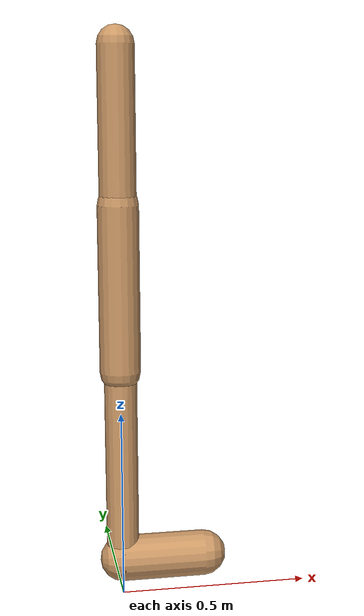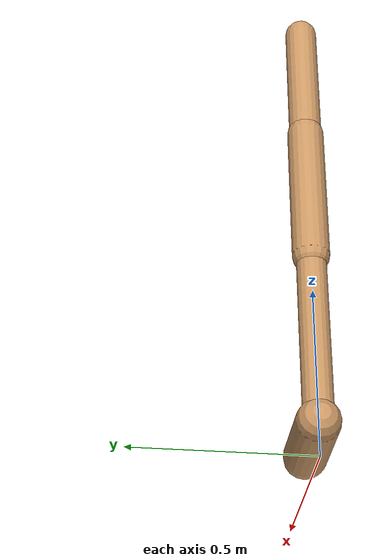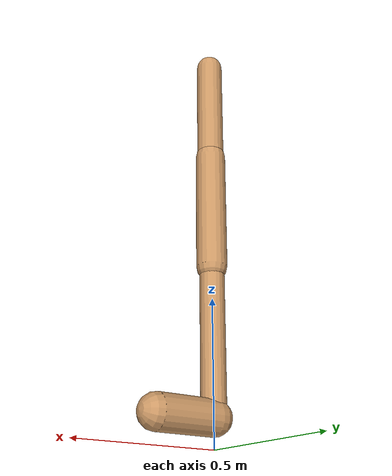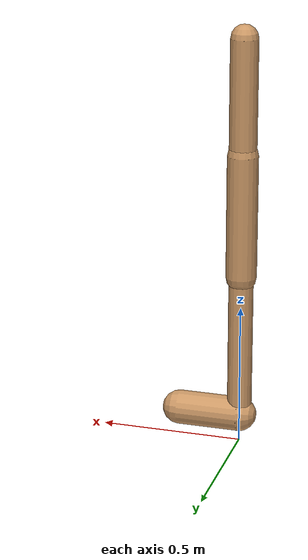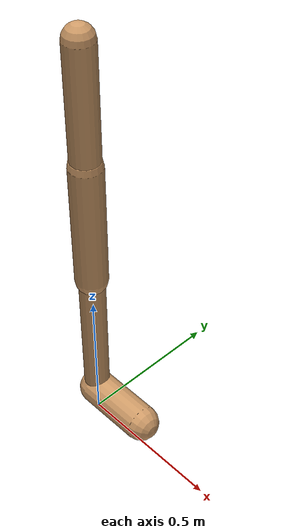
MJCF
<mujoco model="walker2d">
  <compiler angle="degree" coordinate="global" inertiafromgeom="true" />
  <default>
    <joint armature="0.01" damping=".1" limited="true" />
    <geom conaffinity="0" condim="3" contype="1" density="1000" friction="0.8 .1 .1" rgba="0.8 0.6 .4 1" />
  </default>
  <option integrator="RK4" timestep="0.002" />
  <worldbody>

    <body name="torso" pos="0 0 -0.03512101180874443">
      <joint armature="0" axis="1 0 0" damping="0" limited="false" name="ignorex" pos="0 0 0" stiffness="0" type="slide" />
      <joint armature="0" axis="0 0 1" damping="0" limited="false" name="ignorez" pos="0 0 0" ref="1.25" stiffness="0" type="slide" />
      <joint armature="0" axis="0 1 0" damping="0" limited="false" name="ignorey" pos="0 0 0" stiffness="0" type="hinge" />
      <geom fromto="0 0 1.45 0 0 1.05" name="torso_geom" size="0.04784015889659747" type="capsule" />
      <body name="thigh">
        <joint axis="0 -1 0" name="thigh_joint" pos="0 0 1.05" range="-150 0" type="hinge" />
        <geom fromto="0.0 0.0 1.05 0.0 0.0 0.6166362687515105" name="thigh_geom" size="0.05365266580410932" type="capsule" />
        <body name="leg" pos="0.0 0.0 0.016636268751510475">
          <joint axis="0 -1 0" name="leg_joint" pos="0 0 0.6" range="-150 0" type="hinge" />
          <geom fromto="0.0 0.0 0.6 0.0 0.0 0.11848474305723392" name="leg_geom" size="0.04292213264328746" type="capsule" />
          <body name="foot" pos="0.0 0.0 0.01848474305723391">
            <joint axis="0 -1 0" name="foot_joint" pos="0 0 0.1" range="-45 45" type="hinge" />
            <geom fromto="-0.0 0.0 0.10000000000000002 0.2182138763104082 0.0 0.10000000000000002" name="foot_geom" size="0.060810521606412996" type="capsule" />
          </body>
        </body>
      </body>

      <body name="thigh_left">
        <joint axis="0 -1 0" name="thigh_left_joint" pos="0 0 1.05" range="-150 0" type="hinge" />
        <geom fromto="0.0 0.0 1.05 0.0 0.0 0.6166362687515105" name="thigh_left_geom" rgba=".7 .3 .6 1" size="0.05365266580410932" type="capsule" />
        <body name="leg_left" pos="0.0 0.0 0.016636268751510475">
          <joint axis="0 -1 0" name="leg_left_joint" pos="0 0 0.6" range="-150 0" type="hinge" />
          <geom fromto="0.0 0.0 0.6 0.0 0.0 0.11848474305723392" name="leg_left_geom" rgba=".7 .3 .6 1" size="0.04292213264328746" type="capsule" />
          <body name="foot_left" pos="0.0 0.0 0.01848474305723391">
            <joint axis="0 -1 0" name="foot_left_joint" pos="0 0 0.1" range="-45 45" type="hinge" />
            <geom fromto="-0.0 0.0 0.10000000000000002 0.2182138763104082 0.0 0.10000000000000002" name="foot_left_geom" rgba=".7 .3 .6 1" size="0.060810521606412996" type="capsule" />
          </body>
        </body>
      </body>
    </body>
  </worldbody>
  <actuator>

    <motor ctrllimited="true" ctrlrange="-1.0 1.0" gear="100" joint="thigh_joint" />
    <motor ctrllimited="true" ctrlrange="-1.0 1.0" gear="100" joint="leg_joint" />
    <motor ctrllimited="true" ctrlrange="-1.0 1.0" gear="100" joint="foot_joint" />
    <motor ctrllimited="true" ctrlrange="-1.0 1.0" gear="100" joint="thigh_left_joint" />
    <motor ctrllimited="true" ctrlrange="-1.0 1.0" gear="100" joint="leg_left_joint" />
    <motor ctrllimited="true" ctrlrange="-1.0 1.0" gear="100" joint="foot_left_joint" />

  </actuator>
</mujoco>
